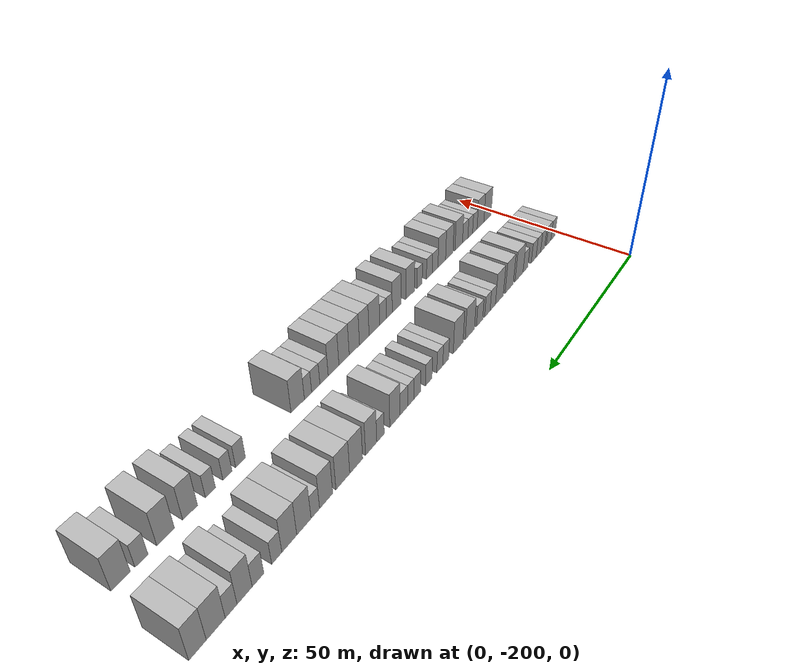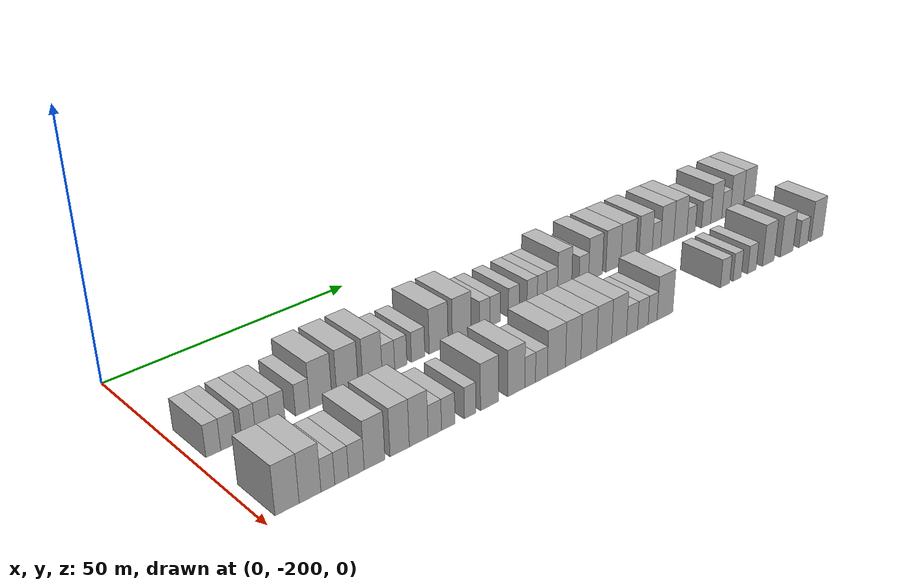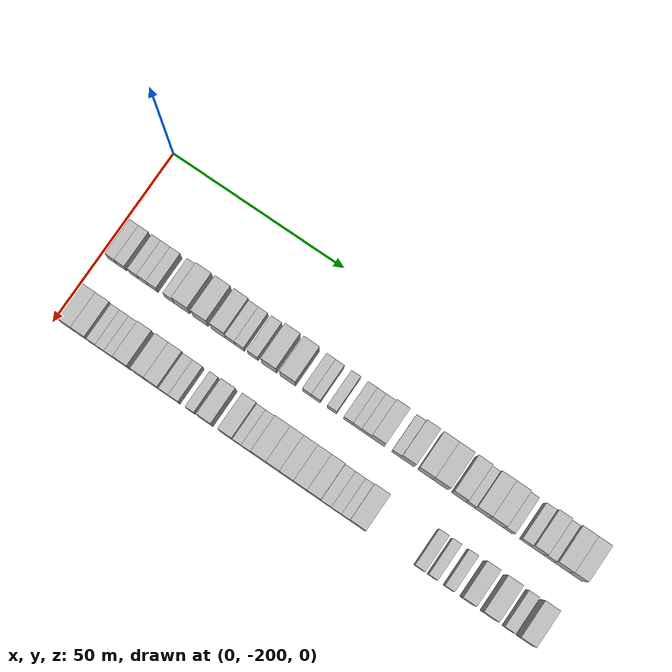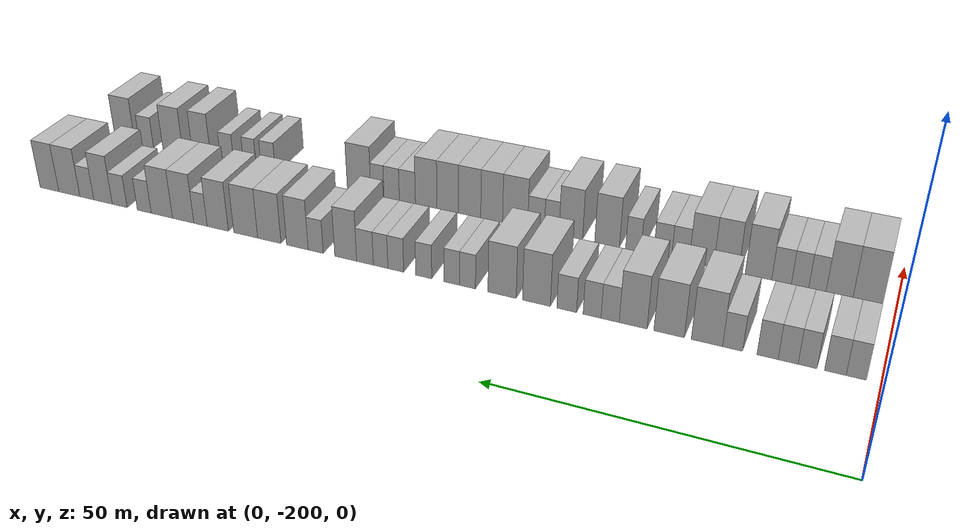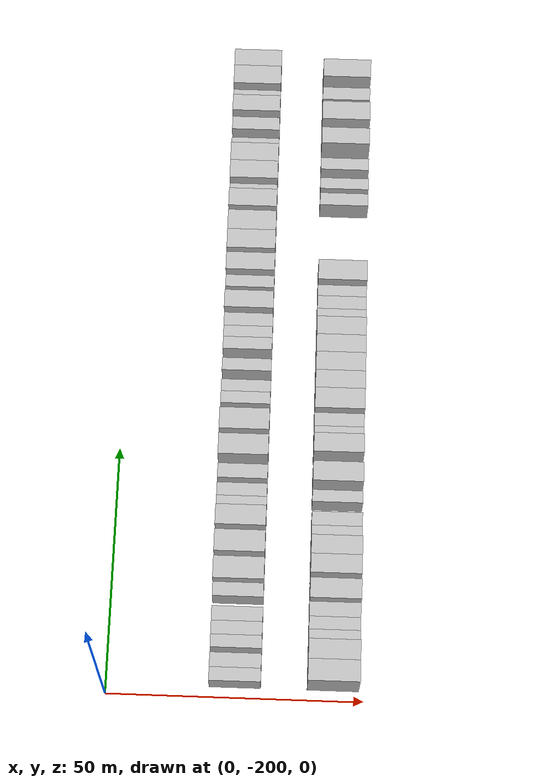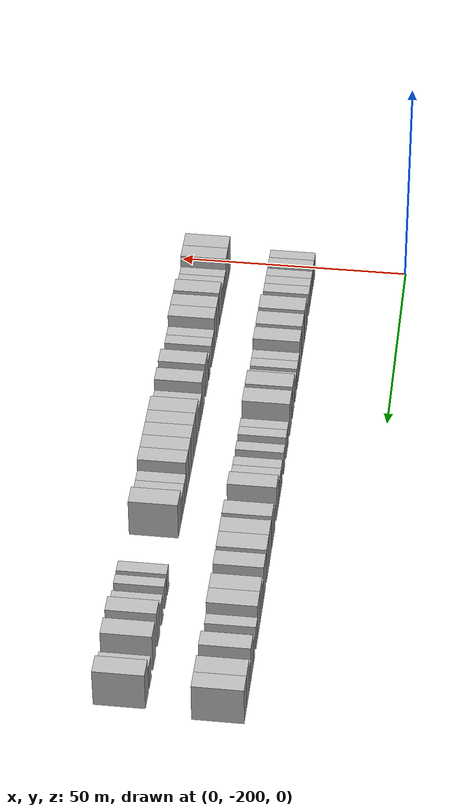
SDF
<sdf version="1.6">
 <world name="default">
  <model name="building_1">
   <static>1</static>
   <pose>25.0000 -196.6671 0 0.000000 0.000000 0.000000</pose>
   <link name="link">
    <pose>0 0 3.00 0 0 0</pose>
    <collision name="collision"><geometry><box><size>10.0000 2.6657 6.0000</size></box></geometry></collision>
    <visual name="visual">
     <cast_shadows>0</cast_shadows>
     <geometry><box><size>10.0000 2.6657 6.0000</size></box></geometry>
     <material>
      <script>
       <uri>model://HANNAS_wall/materials/scripts</uri>
       <uri>model://HANNAS_wall/materials/textures</uri>
       <name>vrc/HANNAS_wall</name>
      </script>
     </material>
    </visual>
   </link>
  </model>
  <model name="building_2">
   <static>1</static>
   <pose>25.0000 -193.9017 0 0.000000 0.000000 0.000000</pose>
   <link name="link">
    <pose>0 0 3.00 0 0 0</pose>
    <collision name="collision"><geometry><box><size>10.0000 2.8653 6.0000</size></box></geometry></collision>
    <visual name="visual">
     <cast_shadows>0</cast_shadows>
     <geometry><box><size>10.0000 2.8653 6.0000</size></box></geometry>
     <material>
      <script>
       <uri>model://HANNAS_wall/materials/scripts</uri>
       <uri>model://HANNAS_wall/materials/textures</uri>
       <name>vrc/HANNAS_wall</name>
      </script>
     </material>
    </visual>
   </link>
  </model>
  <model name="building_3">
   <static>1</static>
   <pose>25.0000 -190.1941 0 0.000000 0.000000 0.000000</pose>
   <link name="link">
    <pose>0 0 3.00 0 0 0</pose>
    <collision name="collision"><geometry><box><size>10.0000 2.5499 6.0000</size></box></geometry></collision>
    <visual name="visual">
     <cast_shadows>0</cast_shadows>
     <geometry><box><size>10.0000 2.5499 6.0000</size></box></geometry>
     <material>
      <script>
       <uri>model://HANNAS_wall/materials/scripts</uri>
       <uri>model://HANNAS_wall/materials/textures</uri>
       <name>vrc/HANNAS_wall</name>
      </script>
     </material>
    </visual>
   </link>
  </model>
  <model name="building_4">
   <static>1</static>
   <pose>25.0000 -187.5583 0 0.000000 0.000000 0.000000</pose>
   <link name="link">
    <pose>0 0 3.00 0 0 0</pose>
    <collision name="collision"><geometry><box><size>10.0000 2.7217 6.0000</size></box></geometry></collision>
    <visual name="visual">
     <cast_shadows>0</cast_shadows>
     <geometry><box><size>10.0000 2.7217 6.0000</size></box></geometry>
     <material>
      <script>
       <uri>model://HANNAS_wall/materials/scripts</uri>
       <uri>model://HANNAS_wall/materials/textures</uri>
       <name>vrc/HANNAS_wall</name>
      </script>
     </material>
    </visual>
   </link>
  </model>
  <model name="building_5">
   <static>1</static>
   <pose>25.0000 -184.7569 0 0.000000 0.000000 0.000000</pose>
   <link name="link">
    <pose>0 0 3.00 0 0 0</pose>
    <collision name="collision"><geometry><box><size>10.0000 2.8812 6.0000</size></box></geometry></collision>
    <visual name="visual">
     <cast_shadows>0</cast_shadows>
     <geometry><box><size>10.0000 2.8812 6.0000</size></box></geometry>
     <material>
      <script>
       <uri>model://HANNAS_wall/materials/scripts</uri>
       <uri>model://HANNAS_wall/materials/textures</uri>
       <name>vrc/HANNAS_wall</name>
      </script>
     </material>
    </visual>
   </link>
  </model>
  <model name="building_6">
   <static>1</static>
   <pose>25.0000 -179.9197 0 0.000000 0.000000 0.000000</pose>
   <link name="link">
    <pose>0 0 3.00 0 0 0</pose>
    <collision name="collision"><geometry><box><size>10.0000 2.7931 6.0000</size></box></geometry></collision>
    <visual name="visual">
     <cast_shadows>0</cast_shadows>
     <geometry><box><size>10.0000 2.7931 6.0000</size></box></geometry>
     <material>
      <script>
       <uri>model://HANNAS_wall/materials/scripts</uri>
       <uri>model://HANNAS_wall/materials/textures</uri>
       <name>vrc/HANNAS_wall</name>
      </script>
     </material>
    </visual>
   </link>
  </model>
  <model name="building_7">
   <static>1</static>
   <pose>25.0000 -176.3036 0 0.000000 0.000000 0.000000</pose>
   <link name="link">
    <pose>0 0 4.50 0 0 0</pose>
    <collision name="collision"><geometry><box><size>10.0000 4.4391 9.0000</size></box></geometry></collision>
    <visual name="visual">
     <cast_shadows>0</cast_shadows>
     <geometry><box><size>10.0000 4.4391 9.0000</size></box></geometry>
     <material>
      <script>
       <uri>model://HANNAS_wall/materials/scripts</uri>
       <uri>model://HANNAS_wall/materials/textures</uri>
       <name>vrc/HANNAS_wall</name>
      </script>
     </material>
    </visual>
   </link>
  </model>
  <model name="building_8">
   <static>1</static>
   <pose>25.0000 -170.8901 0 0.000000 0.000000 0.000000</pose>
   <link name="link">
    <pose>0 0 4.50 0 0 0</pose>
    <collision name="collision"><geometry><box><size>10.0000 4.3879 9.0000</size></box></geometry></collision>
    <visual name="visual">
     <cast_shadows>0</cast_shadows>
     <geometry><box><size>10.0000 4.3879 9.0000</size></box></geometry>
     <material>
      <script>
       <uri>model://HANNAS_wall/materials/scripts</uri>
       <uri>model://HANNAS_wall/materials/textures</uri>
       <name>vrc/HANNAS_wall</name>
      </script>
     </material>
    </visual>
   </link>
  </model>
  <model name="building_9">
   <static>1</static>
   <pose>25.0000 -165.6503 0 0.000000 0.000000 0.000000</pose>
   <link name="link">
    <pose>0 0 4.50 0 0 0</pose>
    <collision name="collision"><geometry><box><size>10.0000 4.0917 9.0000</size></box></geometry></collision>
    <visual name="visual">
     <cast_shadows>0</cast_shadows>
     <geometry><box><size>10.0000 4.0917 9.0000</size></box></geometry>
     <material>
      <script>
       <uri>model://HANNAS_wall/materials/scripts</uri>
       <uri>model://HANNAS_wall/materials/textures</uri>
       <name>vrc/HANNAS_wall</name>
      </script>
     </material>
    </visual>
   </link>
  </model>
  <model name="building_10">
   <static>1</static>
   <pose>25.0000 -162.2498 0 0.000000 0.000000 0.000000</pose>
   <link name="link">
    <pose>0 0 3.00 0 0 0</pose>
    <collision name="collision"><geometry><box><size>10.0000 2.7093 6.0000</size></box></geometry></collision>
    <visual name="visual">
     <cast_shadows>0</cast_shadows>
     <geometry><box><size>10.0000 2.7093 6.0000</size></box></geometry>
     <material>
      <script>
       <uri>model://HANNAS_wall/materials/scripts</uri>
       <uri>model://HANNAS_wall/materials/textures</uri>
       <name>vrc/HANNAS_wall</name>
      </script>
     </material>
    </visual>
   </link>
  </model>
  <model name="building_11">
   <static>1</static>
   <pose>25.0000 -159.5529 0 0.000000 0.000000 0.000000</pose>
   <link name="link">
    <pose>0 0 3.00 0 0 0</pose>
    <collision name="collision"><geometry><box><size>10.0000 2.6846 6.0000</size></box></geometry></collision>
    <visual name="visual">
     <cast_shadows>0</cast_shadows>
     <geometry><box><size>10.0000 2.6846 6.0000</size></box></geometry>
     <material>
      <script>
       <uri>model://HANNAS_wall/materials/scripts</uri>
       <uri>model://HANNAS_wall/materials/textures</uri>
       <name>vrc/HANNAS_wall</name>
      </script>
     </material>
    </visual>
   </link>
  </model>
  <model name="building_12">
   <static>1</static>
   <pose>25.0000 -155.7123 0 0.000000 0.000000 0.000000</pose>
   <link name="link">
    <pose>0 0 3.00 0 0 0</pose>
    <collision name="collision"><geometry><box><size>10.0000 2.9966 6.0000</size></box></geometry></collision>
    <visual name="visual">
     <cast_shadows>0</cast_shadows>
     <geometry><box><size>10.0000 2.9966 6.0000</size></box></geometry>
     <material>
      <script>
       <uri>model://HANNAS_wall/materials/scripts</uri>
       <uri>model://HANNAS_wall/materials/textures</uri>
       <name>vrc/HANNAS_wall</name>
      </script>
     </material>
    </visual>
   </link>
  </model>
  <model name="building_13">
   <static>1</static>
   <pose>25.0000 -151.0611 0 0.000000 0.000000 0.000000</pose>
   <link name="link">
    <pose>0 0 4.50 0 0 0</pose>
    <collision name="collision"><geometry><box><size>10.0000 4.3059 9.0000</size></box></geometry></collision>
    <visual name="visual">
     <cast_shadows>0</cast_shadows>
     <geometry><box><size>10.0000 4.3059 9.0000</size></box></geometry>
     <material>
      <script>
       <uri>model://HANNAS_wall/materials/scripts</uri>
       <uri>model://HANNAS_wall/materials/textures</uri>
       <name>vrc/HANNAS_wall</name>
      </script>
     </material>
    </visual>
   </link>
  </model>
  <model name="building_14">
   <static>1</static>
   <pose>25.0000 -145.6856 0 0.000000 0.000000 0.000000</pose>
   <link name="link">
    <pose>0 0 4.50 0 0 0</pose>
    <collision name="collision"><geometry><box><size>10.0000 4.4451 9.0000</size></box></geometry></collision>
    <visual name="visual">
     <cast_shadows>0</cast_shadows>
     <geometry><box><size>10.0000 4.4451 9.0000</size></box></geometry>
     <material>
      <script>
       <uri>model://HANNAS_wall/materials/scripts</uri>
       <uri>model://HANNAS_wall/materials/textures</uri>
       <name>vrc/HANNAS_wall</name>
      </script>
     </material>
    </visual>
   </link>
  </model>
  <model name="building_15">
   <static>1</static>
   <pose>25.0000 -140.1893 0 0.000000 0.000000 0.000000</pose>
   <link name="link">
    <pose>0 0 3.00 0 0 0</pose>
    <collision name="collision"><geometry><box><size>10.0000 2.5474 6.0000</size></box></geometry></collision>
    <visual name="visual">
     <cast_shadows>0</cast_shadows>
     <geometry><box><size>10.0000 2.5474 6.0000</size></box></geometry>
     <material>
      <script>
       <uri>model://HANNAS_wall/materials/scripts</uri>
       <uri>model://HANNAS_wall/materials/textures</uri>
       <name>vrc/HANNAS_wall</name>
      </script>
     </material>
    </visual>
   </link>
  </model>
  <model name="building_16">
   <static>1</static>
   <pose>25.0000 -137.6492 0 0.000000 0.000000 0.000000</pose>
   <link name="link">
    <pose>0 0 3.00 0 0 0</pose>
    <collision name="collision"><geometry><box><size>10.0000 2.5328 6.0000</size></box></geometry></collision>
    <visual name="visual">
     <cast_shadows>0</cast_shadows>
     <geometry><box><size>10.0000 2.5328 6.0000</size></box></geometry>
     <material>
      <script>
       <uri>model://HANNAS_wall/materials/scripts</uri>
       <uri>model://HANNAS_wall/materials/textures</uri>
       <name>vrc/HANNAS_wall</name>
      </script>
     </material>
    </visual>
   </link>
  </model>
  <model name="building_17">
   <static>1</static>
   <pose>25.0000 -133.0643 0 0.000000 0.000000 0.000000</pose>
   <link name="link">
    <pose>0 0 3.00 0 0 0</pose>
    <collision name="collision"><geometry><box><size>10.0000 2.6369 6.0000</size></box></geometry></collision>
    <visual name="visual">
     <cast_shadows>0</cast_shadows>
     <geometry><box><size>10.0000 2.6369 6.0000</size></box></geometry>
     <material>
      <script>
       <uri>model://HANNAS_wall/materials/scripts</uri>
       <uri>model://HANNAS_wall/materials/textures</uri>
       <name>vrc/HANNAS_wall</name>
      </script>
     </material>
    </visual>
   </link>
  </model>
  <model name="building_18">
   <static>1</static>
   <pose>25.0000 -128.4281 0 0.000000 0.000000 0.000000</pose>
   <link name="link">
    <pose>0 0 3.00 0 0 0</pose>
    <collision name="collision"><geometry><box><size>10.0000 2.6356 6.0000</size></box></geometry></collision>
    <visual name="visual">
     <cast_shadows>0</cast_shadows>
     <geometry><box><size>10.0000 2.6356 6.0000</size></box></geometry>
     <material>
      <script>
       <uri>model://HANNAS_wall/materials/scripts</uri>
       <uri>model://HANNAS_wall/materials/textures</uri>
       <name>vrc/HANNAS_wall</name>
      </script>
     </material>
    </visual>
   </link>
  </model>
  <model name="building_19">
   <static>1</static>
   <pose>25.0000 -125.8815 0 0.000000 0.000000 0.000000</pose>
   <link name="link">
    <pose>0 0 3.00 0 0 0</pose>
    <collision name="collision"><geometry><box><size>10.0000 2.4576 6.0000</size></box></geometry></collision>
    <visual name="visual">
     <cast_shadows>0</cast_shadows>
     <geometry><box><size>10.0000 2.4576 6.0000</size></box></geometry>
     <material>
      <script>
       <uri>model://HANNAS_wall/materials/scripts</uri>
       <uri>model://HANNAS_wall/materials/textures</uri>
       <name>vrc/HANNAS_wall</name>
      </script>
     </material>
    </visual>
   </link>
  </model>
  <model name="building_20">
   <static>1</static>
   <pose>25.0000 -123.2328 0 0.000000 0.000000 0.000000</pose>
   <link name="link">
    <pose>0 0 3.00 0 0 0</pose>
    <collision name="collision"><geometry><box><size>10.0000 2.8397 6.0000</size></box></geometry></collision>
    <visual name="visual">
     <cast_shadows>0</cast_shadows>
     <geometry><box><size>10.0000 2.8397 6.0000</size></box></geometry>
     <material>
      <script>
       <uri>model://HANNAS_wall/materials/scripts</uri>
       <uri>model://HANNAS_wall/materials/textures</uri>
       <name>vrc/HANNAS_wall</name>
      </script>
     </material>
    </visual>
   </link>
  </model>
  <model name="building_21">
   <static>1</static>
   <pose>25.0000 -119.9275 0 0.000000 0.000000 0.000000</pose>
   <link name="link">
    <pose>0 0 4.50 0 0 0</pose>
    <collision name="collision"><geometry><box><size>10.0000 3.7709 9.0000</size></box></geometry></collision>
    <visual name="visual">
     <cast_shadows>0</cast_shadows>
     <geometry><box><size>10.0000 3.7709 9.0000</size></box></geometry>
     <material>
      <script>
       <uri>model://HANNAS_wall/materials/scripts</uri>
       <uri>model://HANNAS_wall/materials/textures</uri>
       <name>vrc/HANNAS_wall</name>
      </script>
     </material>
    </visual>
   </link>
  </model>
  <model name="building_22">
   <static>1</static>
   <pose>25.0000 -114.7271 0 0.000000 0.000000 0.000000</pose>
   <link name="link">
    <pose>0 0 3.00 0 0 0</pose>
    <collision name="collision"><geometry><box><size>10.0000 2.6299 6.0000</size></box></geometry></collision>
    <visual name="visual">
     <cast_shadows>0</cast_shadows>
     <geometry><box><size>10.0000 2.6299 6.0000</size></box></geometry>
     <material>
      <script>
       <uri>model://HANNAS_wall/materials/scripts</uri>
       <uri>model://HANNAS_wall/materials/textures</uri>
       <name>vrc/HANNAS_wall</name>
      </script>
     </material>
    </visual>
   </link>
  </model>
  <model name="building_23">
   <static>1</static>
   <pose>25.0000 -111.5015 0 0.000000 0.000000 0.000000</pose>
   <link name="link">
    <pose>0 0 4.50 0 0 0</pose>
    <collision name="collision"><geometry><box><size>10.0000 3.8214 9.0000</size></box></geometry></collision>
    <visual name="visual">
     <cast_shadows>0</cast_shadows>
     <geometry><box><size>10.0000 3.8214 9.0000</size></box></geometry>
     <material>
      <script>
       <uri>model://HANNAS_wall/materials/scripts</uri>
       <uri>model://HANNAS_wall/materials/textures</uri>
       <name>vrc/HANNAS_wall</name>
      </script>
     </material>
    </visual>
   </link>
  </model>
  <model name="building_24">
   <static>1</static>
   <pose>25.0000 -106.4917 0 0.000000 0.000000 0.000000</pose>
   <link name="link">
    <pose>0 0 4.50 0 0 0</pose>
    <collision name="collision"><geometry><box><size>10.0000 4.1983 9.0000</size></box></geometry></collision>
    <visual name="visual">
     <cast_shadows>0</cast_shadows>
     <geometry><box><size>10.0000 4.1983 9.0000</size></box></geometry>
     <material>
      <script>
       <uri>model://HANNAS_wall/materials/scripts</uri>
       <uri>model://HANNAS_wall/materials/textures</uri>
       <name>vrc/HANNAS_wall</name>
      </script>
     </material>
    </visual>
   </link>
  </model>
  <model name="building_25">
   <static>1</static>
   <pose>25.0000 -102.2147 0 0.000000 0.000000 0.000000</pose>
   <link name="link">
    <pose>0 0 4.50 0 0 0</pose>
    <collision name="collision"><geometry><box><size>10.0000 4.3557 9.0000</size></box></geometry></collision>
    <visual name="visual">
     <cast_shadows>0</cast_shadows>
     <geometry><box><size>10.0000 4.3557 9.0000</size></box></geometry>
     <material>
      <script>
       <uri>model://HANNAS_wall/materials/scripts</uri>
       <uri>model://HANNAS_wall/materials/textures</uri>
       <name>vrc/HANNAS_wall</name>
      </script>
     </material>
    </visual>
   </link>
  </model>
  <model name="building_26">
   <static>1</static>
   <pose>25.0000 -97.0716 0 0.000000 0.000000 0.000000</pose>
   <link name="link">
    <pose>0 0 4.50 0 0 0</pose>
    <collision name="collision"><geometry><box><size>10.0000 3.9305 9.0000</size></box></geometry></collision>
    <visual name="visual">
     <cast_shadows>0</cast_shadows>
     <geometry><box><size>10.0000 3.9305 9.0000</size></box></geometry>
     <material>
      <script>
       <uri>model://HANNAS_wall/materials/scripts</uri>
       <uri>model://HANNAS_wall/materials/textures</uri>
       <name>vrc/HANNAS_wall</name>
      </script>
     </material>
    </visual>
   </link>
  </model>
  <model name="building_27">
   <static>1</static>
   <pose>25.0000 -93.8565 0 0.000000 0.000000 0.000000</pose>
   <link name="link">
    <pose>0 0 3.00 0 0 0</pose>
    <collision name="collision"><geometry><box><size>10.0000 2.4998 6.0000</size></box></geometry></collision>
    <visual name="visual">
     <cast_shadows>0</cast_shadows>
     <geometry><box><size>10.0000 2.4998 6.0000</size></box></geometry>
     <material>
      <script>
       <uri>model://HANNAS_wall/materials/scripts</uri>
       <uri>model://HANNAS_wall/materials/textures</uri>
       <name>vrc/HANNAS_wall</name>
      </script>
     </material>
    </visual>
   </link>
  </model>
  <model name="building_28">
   <static>1</static>
   <pose>25.0000 -90.5941 0 0.000000 0.000000 0.000000</pose>
   <link name="link">
    <pose>0 0 4.50 0 0 0</pose>
    <collision name="collision"><geometry><box><size>10.0000 4.0250 9.0000</size></box></geometry></collision>
    <visual name="visual">
     <cast_shadows>0</cast_shadows>
     <geometry><box><size>10.0000 4.0250 9.0000</size></box></geometry>
     <material>
      <script>
       <uri>model://HANNAS_wall/materials/scripts</uri>
       <uri>model://HANNAS_wall/materials/textures</uri>
       <name>vrc/HANNAS_wall</name>
      </script>
     </material>
    </visual>
   </link>
  </model>
  <model name="building_29">
   <static>1</static>
   <pose>25.0000 -86.5436 0 0.000000 0.000000 0.000000</pose>
   <link name="link">
    <pose>0 0 4.50 0 0 0</pose>
    <collision name="collision"><geometry><box><size>10.0000 4.0760 9.0000</size></box></geometry></collision>
    <visual name="visual">
     <cast_shadows>0</cast_shadows>
     <geometry><box><size>10.0000 4.0760 9.0000</size></box></geometry>
     <material>
      <script>
       <uri>model://HANNAS_wall/materials/scripts</uri>
       <uri>model://HANNAS_wall/materials/textures</uri>
       <name>vrc/HANNAS_wall</name>
      </script>
     </material>
    </visual>
   </link>
  </model>
  <model name="building_30">
   <static>1</static>
   <pose>25.0000 -83.1639 0 0.000000 0.000000 0.000000</pose>
   <link name="link">
    <pose>0 0 3.00 0 0 0</pose>
    <collision name="collision"><geometry><box><size>10.0000 2.6834 6.0000</size></box></geometry></collision>
    <visual name="visual">
     <cast_shadows>0</cast_shadows>
     <geometry><box><size>10.0000 2.6834 6.0000</size></box></geometry>
     <material>
      <script>
       <uri>model://HANNAS_wall/materials/scripts</uri>
       <uri>model://HANNAS_wall/materials/textures</uri>
       <name>vrc/HANNAS_wall</name>
      </script>
     </material>
    </visual>
   </link>
  </model>
  <model name="building_31">
   <static>1</static>
   <pose>25.0000 -78.3630 0 0.000000 0.000000 0.000000</pose>
   <link name="link">
    <pose>0 0 3.00 0 0 0</pose>
    <collision name="collision"><geometry><box><size>10.0000 2.9185 6.0000</size></box></geometry></collision>
    <visual name="visual">
     <cast_shadows>0</cast_shadows>
     <geometry><box><size>10.0000 2.9185 6.0000</size></box></geometry>
     <material>
      <script>
       <uri>model://HANNAS_wall/materials/scripts</uri>
       <uri>model://HANNAS_wall/materials/textures</uri>
       <name>vrc/HANNAS_wall</name>
      </script>
     </material>
    </visual>
   </link>
  </model>
  <model name="building_32">
   <static>1</static>
   <pose>25.0000 -75.0674 0 0.000000 0.000000 0.000000</pose>
   <link name="link">
    <pose>0 0 4.50 0 0 0</pose>
    <collision name="collision"><geometry><box><size>10.0000 3.6728 9.0000</size></box></geometry></collision>
    <visual name="visual">
     <cast_shadows>0</cast_shadows>
     <geometry><box><size>10.0000 3.6728 9.0000</size></box></geometry>
     <material>
      <script>
       <uri>model://HANNAS_wall/materials/scripts</uri>
       <uri>model://HANNAS_wall/materials/textures</uri>
       <name>vrc/HANNAS_wall</name>
      </script>
     </material>
    </visual>
   </link>
  </model>
  <model name="building_33">
   <static>1</static>
   <pose>25.0000 -71.8355 0 0.000000 0.000000 0.000000</pose>
   <link name="link">
    <pose>0 0 3.00 0 0 0</pose>
    <collision name="collision"><geometry><box><size>10.0000 2.7911 6.0000</size></box></geometry></collision>
    <visual name="visual">
     <cast_shadows>0</cast_shadows>
     <geometry><box><size>10.0000 2.7911 6.0000</size></box></geometry>
     <material>
      <script>
       <uri>model://HANNAS_wall/materials/scripts</uri>
       <uri>model://HANNAS_wall/materials/textures</uri>
       <name>vrc/HANNAS_wall</name>
      </script>
     </material>
    </visual>
   </link>
  </model>
  <model name="building_34">
   <static>1</static>
   <pose>25.0000 -68.3022 0 0.000000 0.000000 0.000000</pose>
   <link name="link">
    <pose>0 0 4.50 0 0 0</pose>
    <collision name="collision"><geometry><box><size>10.0000 4.2754 9.0000</size></box></geometry></collision>
    <visual name="visual">
     <cast_shadows>0</cast_shadows>
     <geometry><box><size>10.0000 4.2754 9.0000</size></box></geometry>
     <material>
      <script>
       <uri>model://HANNAS_wall/materials/scripts</uri>
       <uri>model://HANNAS_wall/materials/textures</uri>
       <name>vrc/HANNAS_wall</name>
      </script>
     </material>
    </visual>
   </link>
  </model>
  <model name="building_35">
   <static>1</static>
   <pose>25.0000 -64.2594 0 0.000000 0.000000 0.000000</pose>
   <link name="link">
    <pose>0 0 4.50 0 0 0</pose>
    <collision name="collision"><geometry><box><size>10.0000 3.8101 9.0000</size></box></geometry></collision>
    <visual name="visual">
     <cast_shadows>0</cast_shadows>
     <geometry><box><size>10.0000 3.8101 9.0000</size></box></geometry>
     <material>
      <script>
       <uri>model://HANNAS_wall/materials/scripts</uri>
       <uri>model://HANNAS_wall/materials/textures</uri>
       <name>vrc/HANNAS_wall</name>
      </script>
     </material>
    </visual>
   </link>
  </model>
  <model name="building_99">
   <static>1</static>
   <pose>44.0000 -195.8763 0 0.000000 0.000000 0.000000</pose>
   <link name="link">
    <pose>0 0 4.50 0 0 0</pose>
    <collision name="collision"><geometry><box><size>10.0000 4.2473 9.0000</size></box></geometry></collision>
    <visual name="visual">
     <cast_shadows>0</cast_shadows>
     <geometry><box><size>10.0000 4.2473 9.0000</size></box></geometry>
     <material>
      <script>
       <uri>model://HANNAS_wall/materials/scripts</uri>
       <uri>model://HANNAS_wall/materials/textures</uri>
       <name>vrc/HANNAS_wall</name>
      </script>
     </material>
    </visual>
   </link>
  </model>
  <model name="building_100">
   <static>1</static>
   <pose>44.0000 -191.7968 0 0.000000 0.000000 0.000000</pose>
   <link name="link">
    <pose>0 0 4.50 0 0 0</pose>
    <collision name="collision"><geometry><box><size>10.0000 3.9117 9.0000</size></box></geometry></collision>
    <visual name="visual">
     <cast_shadows>0</cast_shadows>
     <geometry><box><size>10.0000 3.9117 9.0000</size></box></geometry>
     <material>
      <script>
       <uri>model://HANNAS_wall/materials/scripts</uri>
       <uri>model://HANNAS_wall/materials/textures</uri>
       <name>vrc/HANNAS_wall</name>
      </script>
     </material>
    </visual>
   </link>
  </model>
  <model name="building_101">
   <static>1</static>
   <pose>44.0000 -188.5766 0 0.000000 0.000000 0.000000</pose>
   <link name="link">
    <pose>0 0 3.00 0 0 0</pose>
    <collision name="collision"><geometry><box><size>10.0000 2.5287 6.0000</size></box></geometry></collision>
    <visual name="visual">
     <cast_shadows>0</cast_shadows>
     <geometry><box><size>10.0000 2.5287 6.0000</size></box></geometry>
     <material>
      <script>
       <uri>model://HANNAS_wall/materials/scripts</uri>
       <uri>model://HANNAS_wall/materials/textures</uri>
       <name>vrc/HANNAS_wall</name>
      </script>
     </material>
    </visual>
   </link>
  </model>
  <model name="building_102">
   <static>1</static>
   <pose>44.0000 -186.0329 0 0.000000 0.000000 0.000000</pose>
   <link name="link">
    <pose>0 0 3.00 0 0 0</pose>
    <collision name="collision"><geometry><box><size>10.0000 2.5588 6.0000</size></box></geometry></collision>
    <visual name="visual">
     <cast_shadows>0</cast_shadows>
     <geometry><box><size>10.0000 2.5588 6.0000</size></box></geometry>
     <material>
      <script>
       <uri>model://HANNAS_wall/materials/scripts</uri>
       <uri>model://HANNAS_wall/materials/textures</uri>
       <name>vrc/HANNAS_wall</name>
      </script>
     </material>
    </visual>
   </link>
  </model>
  <model name="building_103">
   <static>1</static>
   <pose>44.0000 -183.2848 0 0.000000 0.000000 0.000000</pose>
   <link name="link">
    <pose>0 0 3.00 0 0 0</pose>
    <collision name="collision"><geometry><box><size>10.0000 2.9373 6.0000</size></box></geometry></collision>
    <visual name="visual">
     <cast_shadows>0</cast_shadows>
     <geometry><box><size>10.0000 2.9373 6.0000</size></box></geometry>
     <material>
      <script>
       <uri>model://HANNAS_wall/materials/scripts</uri>
       <uri>model://HANNAS_wall/materials/textures</uri>
       <name>vrc/HANNAS_wall</name>
      </script>
     </material>
    </visual>
   </link>
  </model>
  <model name="building_104">
   <static>1</static>
   <pose>44.0000 -179.8151 0 0.000000 0.000000 0.000000</pose>
   <link name="link">
    <pose>0 0 4.50 0 0 0</pose>
    <collision name="collision"><geometry><box><size>10.0000 4.0022 9.0000</size></box></geometry></collision>
    <visual name="visual">
     <cast_shadows>0</cast_shadows>
     <geometry><box><size>10.0000 4.0022 9.0000</size></box></geometry>
     <material>
      <script>
       <uri>model://HANNAS_wall/materials/scripts</uri>
       <uri>model://HANNAS_wall/materials/textures</uri>
       <name>vrc/HANNAS_wall</name>
      </script>
     </material>
    </visual>
   </link>
  </model>
  <model name="building_105">
   <static>1</static>
   <pose>44.0000 -174.9073 0 0.000000 0.000000 0.000000</pose>
   <link name="link">
    <pose>0 0 4.50 0 0 0</pose>
    <collision name="collision"><geometry><box><size>10.0000 3.8133 9.0000</size></box></geometry></collision>
    <visual name="visual">
     <cast_shadows>0</cast_shadows>
     <geometry><box><size>10.0000 3.8133 9.0000</size></box></geometry>
     <material>
      <script>
       <uri>model://HANNAS_wall/materials/scripts</uri>
       <uri>model://HANNAS_wall/materials/textures</uri>
       <name>vrc/HANNAS_wall</name>
      </script>
     </material>
    </visual>
   </link>
  </model>
  <model name="building_106">
   <static>1</static>
   <pose>44.0000 -171.0996 0 0.000000 0.000000 0.000000</pose>
   <link name="link">
    <pose>0 0 4.50 0 0 0</pose>
    <collision name="collision"><geometry><box><size>10.0000 3.8022 9.0000</size></box></geometry></collision>
    <visual name="visual">
     <cast_shadows>0</cast_shadows>
     <geometry><box><size>10.0000 3.8022 9.0000</size></box></geometry>
     <material>
      <script>
       <uri>model://HANNAS_wall/materials/scripts</uri>
       <uri>model://HANNAS_wall/materials/textures</uri>
       <name>vrc/HANNAS_wall</name>
      </script>
     </material>
    </visual>
   </link>
  </model>
  <model name="building_107">
   <static>1</static>
   <pose>44.0000 -167.8122 0 0.000000 0.000000 0.000000</pose>
   <link name="link">
    <pose>0 0 3.00 0 0 0</pose>
    <collision name="collision"><geometry><box><size>10.0000 2.7725 6.0000</size></box></geometry></collision>
    <visual name="visual">
     <cast_shadows>0</cast_shadows>
     <geometry><box><size>10.0000 2.7725 6.0000</size></box></geometry>
     <material>
      <script>
       <uri>model://HANNAS_wall/materials/scripts</uri>
       <uri>model://HANNAS_wall/materials/textures</uri>
       <name>vrc/HANNAS_wall</name>
      </script>
     </material>
    </visual>
   </link>
  </model>
  <model name="building_108">
   <static>1</static>
   <pose>44.0000 -165.0087 0 0.000000 0.000000 0.000000</pose>
   <link name="link">
    <pose>0 0 3.00 0 0 0</pose>
    <collision name="collision"><geometry><box><size>10.0000 2.8345 6.0000</size></box></geometry></collision>
    <visual name="visual">
     <cast_shadows>0</cast_shadows>
     <geometry><box><size>10.0000 2.8345 6.0000</size></box></geometry>
     <material>
      <script>
       <uri>model://HANNAS_wall/materials/scripts</uri>
       <uri>model://HANNAS_wall/materials/textures</uri>
       <name>vrc/HANNAS_wall</name>
      </script>
     </material>
    </visual>
   </link>
  </model>
  <model name="building_109">
   <static>1</static>
   <pose>44.0000 -160.3559 0 0.000000 0.000000 0.000000</pose>
   <link name="link">
    <pose>0 0 3.00 0 0 0</pose>
    <collision name="collision"><geometry><box><size>10.0000 2.4710 6.0000</size></box></geometry></collision>
    <visual name="visual">
     <cast_shadows>0</cast_shadows>
     <geometry><box><size>10.0000 2.4710 6.0000</size></box></geometry>
     <material>
      <script>
       <uri>model://HANNAS_wall/materials/scripts</uri>
       <uri>model://HANNAS_wall/materials/textures</uri>
       <name>vrc/HANNAS_wall</name>
      </script>
     </material>
    </visual>
   </link>
  </model>
  <model name="building_110">
   <static>1</static>
   <pose>44.0000 -156.1059 0 0.000000 0.000000 0.000000</pose>
   <link name="link">
    <pose>0 0 4.50 0 0 0</pose>
    <collision name="collision"><geometry><box><size>10.0000 4.0290 9.0000</size></box></geometry></collision>
    <visual name="visual">
     <cast_shadows>0</cast_shadows>
     <geometry><box><size>10.0000 4.0290 9.0000</size></box></geometry>
     <material>
      <script>
       <uri>model://HANNAS_wall/materials/scripts</uri>
       <uri>model://HANNAS_wall/materials/textures</uri>
       <name>vrc/HANNAS_wall</name>
      </script>
     </material>
    </visual>
   </link>
  </model>
  <model name="building_111">
   <static>1</static>
   <pose>44.0000 -150.1373 0 0.000000 0.000000 0.000000</pose>
   <link name="link">
    <pose>0 0 4.50 0 0 0</pose>
    <collision name="collision"><geometry><box><size>10.0000 3.9082 9.0000</size></box></geometry></collision>
    <visual name="visual">
     <cast_shadows>0</cast_shadows>
     <geometry><box><size>10.0000 3.9082 9.0000</size></box></geometry>
     <material>
      <script>
       <uri>model://HANNAS_wall/materials/scripts</uri>
       <uri>model://HANNAS_wall/materials/textures</uri>
       <name>vrc/HANNAS_wall</name>
      </script>
     </material>
    </visual>
   </link>
  </model>
  <model name="building_112">
   <static>1</static>
   <pose>44.0000 -146.9574 0 0.000000 0.000000 0.000000</pose>
   <link name="link">
    <pose>0 0 3.00 0 0 0</pose>
    <collision name="collision"><geometry><box><size>10.0000 2.4517 6.0000</size></box></geometry></collision>
    <visual name="visual">
     <cast_shadows>0</cast_shadows>
     <geometry><box><size>10.0000 2.4517 6.0000</size></box></geometry>
     <material>
      <script>
       <uri>model://HANNAS_wall/materials/scripts</uri>
       <uri>model://HANNAS_wall/materials/textures</uri>
       <name>vrc/HANNAS_wall</name>
      </script>
     </material>
    </visual>
   </link>
  </model>
  <model name="building_113">
   <static>1</static>
   <pose>44.0000 -144.3265 0 0.000000 0.000000 0.000000</pose>
   <link name="link">
    <pose>0 0 3.00 0 0 0</pose>
    <collision name="collision"><geometry><box><size>10.0000 2.8101 6.0000</size></box></geometry></collision>
    <visual name="visual">
     <cast_shadows>0</cast_shadows>
     <geometry><box><size>10.0000 2.8101 6.0000</size></box></geometry>
     <material>
      <script>
       <uri>model://HANNAS_wall/materials/scripts</uri>
       <uri>model://HANNAS_wall/materials/textures</uri>
       <name>vrc/HANNAS_wall</name>
      </script>
     </material>
    </visual>
   </link>
  </model>
  <model name="building_114">
   <static>1</static>
   <pose>44.0000 -140.7600 0 0.000000 0.000000 0.000000</pose>
   <link name="link">
    <pose>0 0 4.50 0 0 0</pose>
    <collision name="collision"><geometry><box><size>10.0000 4.3229 9.0000</size></box></geometry></collision>
    <visual name="visual">
     <cast_shadows>0</cast_shadows>
     <geometry><box><size>10.0000 4.3229 9.0000</size></box></geometry>
     <material>
      <script>
       <uri>model://HANNAS_wall/materials/scripts</uri>
       <uri>model://HANNAS_wall/materials/textures</uri>
       <name>vrc/HANNAS_wall</name>
      </script>
     </material>
    </visual>
   </link>
  </model>
  <model name="building_115">
   <static>1</static>
   <pose>44.0000 -136.7136 0 0.000000 0.000000 0.000000</pose>
   <link name="link">
    <pose>0 0 4.50 0 0 0</pose>
    <collision name="collision"><geometry><box><size>10.0000 3.7700 9.0000</size></box></geometry></collision>
    <visual name="visual">
     <cast_shadows>0</cast_shadows>
     <geometry><box><size>10.0000 3.7700 9.0000</size></box></geometry>
     <material>
      <script>
       <uri>model://HANNAS_wall/materials/scripts</uri>
       <uri>model://HANNAS_wall/materials/textures</uri>
       <name>vrc/HANNAS_wall</name>
      </script>
     </material>
    </visual>
   </link>
  </model>
  <model name="building_116">
   <static>1</static>
   <pose>44.0000 -132.8602 0 0.000000 0.000000 0.000000</pose>
   <link name="link">
    <pose>0 0 4.50 0 0 0</pose>
    <collision name="collision"><geometry><box><size>10.0000 3.9367 9.0000</size></box></geometry></collision>
    <visual name="visual">
     <cast_shadows>0</cast_shadows>
     <geometry><box><size>10.0000 3.9367 9.0000</size></box></geometry>
     <material>
      <script>
       <uri>model://HANNAS_wall/materials/scripts</uri>
       <uri>model://HANNAS_wall/materials/textures</uri>
       <name>vrc/HANNAS_wall</name>
      </script>
     </material>
    </visual>
   </link>
  </model>
  <model name="building_117">
   <static>1</static>
   <pose>44.0000 -128.9895 0 0.000000 0.000000 0.000000</pose>
   <link name="link">
    <pose>0 0 4.50 0 0 0</pose>
    <collision name="collision"><geometry><box><size>10.0000 3.8049 9.0000</size></box></geometry></collision>
    <visual name="visual">
     <cast_shadows>0</cast_shadows>
     <geometry><box><size>10.0000 3.8049 9.0000</size></box></geometry>
     <material>
      <script>
       <uri>model://HANNAS_wall/materials/scripts</uri>
       <uri>model://HANNAS_wall/materials/textures</uri>
       <name>vrc/HANNAS_wall</name>
      </script>
     </material>
    </visual>
   </link>
  </model>
  <model name="building_118">
   <static>1</static>
   <pose>44.0000 -125.1525 0 0.000000 0.000000 0.000000</pose>
   <link name="link">
    <pose>0 0 4.50 0 0 0</pose>
    <collision name="collision"><geometry><box><size>10.0000 3.8691 9.0000</size></box></geometry></collision>
    <visual name="visual">
     <cast_shadows>0</cast_shadows>
     <geometry><box><size>10.0000 3.8691 9.0000</size></box></geometry>
     <material>
      <script>
       <uri>model://HANNAS_wall/materials/scripts</uri>
       <uri>model://HANNAS_wall/materials/textures</uri>
       <name>vrc/HANNAS_wall</name>
      </script>
     </material>
    </visual>
   </link>
  </model>
  <model name="building_119">
   <static>1</static>
   <pose>44.0000 -121.7632 0 0.000000 0.000000 0.000000</pose>
   <link name="link">
    <pose>0 0 3.00 0 0 0</pose>
    <collision name="collision"><geometry><box><size>10.0000 2.9093 6.0000</size></box></geometry></collision>
    <visual name="visual">
     <cast_shadows>0</cast_shadows>
     <geometry><box><size>10.0000 2.9093 6.0000</size></box></geometry>
     <material>
      <script>
       <uri>model://HANNAS_wall/materials/scripts</uri>
       <uri>model://HANNAS_wall/materials/textures</uri>
       <name>vrc/HANNAS_wall</name>
      </script>
     </material>
    </visual>
   </link>
  </model>
  <model name="building_120">
   <static>1</static>
   <pose>44.0000 -118.8971 0 0.000000 0.000000 0.000000</pose>
   <link name="link">
    <pose>0 0 3.00 0 0 0</pose>
    <collision name="collision"><geometry><box><size>10.0000 2.8230 6.0000</size></box></geometry></collision>
    <visual name="visual">
     <cast_shadows>0</cast_shadows>
     <geometry><box><size>10.0000 2.8230 6.0000</size></box></geometry>
     <material>
      <script>
       <uri>model://HANNAS_wall/materials/scripts</uri>
       <uri>model://HANNAS_wall/materials/textures</uri>
       <name>vrc/HANNAS_wall</name>
      </script>
     </material>
    </visual>
   </link>
  </model>
  <model name="building_121">
   <static>1</static>
   <pose>44.0000 -116.2780 0 0.000000 0.000000 0.000000</pose>
   <link name="link">
    <pose>0 0 3.00 0 0 0</pose>
    <collision name="collision"><geometry><box><size>10.0000 2.4151 6.0000</size></box></geometry></collision>
    <visual name="visual">
     <cast_shadows>0</cast_shadows>
     <geometry><box><size>10.0000 2.4151 6.0000</size></box></geometry>
     <material>
      <script>
       <uri>model://HANNAS_wall/materials/scripts</uri>
       <uri>model://HANNAS_wall/materials/textures</uri>
       <name>vrc/HANNAS_wall</name>
      </script>
     </material>
    </visual>
   </link>
  </model>
  <model name="building_122">
   <static>1</static>
   <pose>44.0000 -112.8801 0 0.000000 0.000000 0.000000</pose>
   <link name="link">
    <pose>0 0 4.50 0 0 0</pose>
    <collision name="collision"><geometry><box><size>10.0000 4.3808 9.0000</size></box></geometry></collision>
    <visual name="visual">
     <cast_shadows>0</cast_shadows>
     <geometry><box><size>10.0000 4.3808 9.0000</size></box></geometry>
     <material>
      <script>
       <uri>model://HANNAS_wall/materials/scripts</uri>
       <uri>model://HANNAS_wall/materials/textures</uri>
       <name>vrc/HANNAS_wall</name>
      </script>
     </material>
    </visual>
   </link>
  </model>
  <model name="building_123">
   <static>1</static>
   <pose>44.0000 -95.5357 0 0.000000 0.000000 0.000000</pose>
   <link name="link">
    <pose>0 0 3.00 0 0 0</pose>
    <collision name="collision"><geometry><box><size>10.0000 2.7693 6.0000</size></box></geometry></collision>
    <visual name="visual">
     <cast_shadows>0</cast_shadows>
     <geometry><box><size>10.0000 2.7693 6.0000</size></box></geometry>
     <material>
      <script>
       <uri>model://HANNAS_wall/materials/scripts</uri>
       <uri>model://HANNAS_wall/materials/textures</uri>
       <name>vrc/HANNAS_wall</name>
      </script>
     </material>
    </visual>
   </link>
  </model>
  <model name="building_124">
   <static>1</static>
   <pose>44.0000 -91.9065 0 0.000000 0.000000 0.000000</pose>
   <link name="link">
    <pose>0 0 3.00 0 0 0</pose>
    <collision name="collision"><geometry><box><size>10.0000 2.4892 6.0000</size></box></geometry></collision>
    <visual name="visual">
     <cast_shadows>0</cast_shadows>
     <geometry><box><size>10.0000 2.4892 6.0000</size></box></geometry>
     <material>
      <script>
       <uri>model://HANNAS_wall/materials/scripts</uri>
       <uri>model://HANNAS_wall/materials/textures</uri>
       <name>vrc/HANNAS_wall</name>
      </script>
     </material>
    </visual>
   </link>
  </model>
  <model name="building_125">
   <static>1</static>
   <pose>44.0000 -87.3406 0 0.000000 0.000000 0.000000</pose>
   <link name="link">
    <pose>0 0 3.00 0 0 0</pose>
    <collision name="collision"><geometry><box><size>10.0000 2.6426 6.0000</size></box></geometry></collision>
    <visual name="visual">
     <cast_shadows>0</cast_shadows>
     <geometry><box><size>10.0000 2.6426 6.0000</size></box></geometry>
     <material>
      <script>
       <uri>model://HANNAS_wall/materials/scripts</uri>
       <uri>model://HANNAS_wall/materials/textures</uri>
       <name>vrc/HANNAS_wall</name>
      </script>
     </material>
    </visual>
   </link>
  </model>
  <model name="building_126">
   <static>1</static>
   <pose>44.0000 -82.1664 0 0.000000 0.000000 0.000000</pose>
   <link name="link">
    <pose>0 0 4.50 0 0 0</pose>
    <collision name="collision"><geometry><box><size>10.0000 3.7058 9.0000</size></box></geometry></collision>
    <visual name="visual">
     <cast_shadows>0</cast_shadows>
     <geometry><box><size>10.0000 3.7058 9.0000</size></box></geometry>
     <material>
      <script>
       <uri>model://HANNAS_wall/materials/scripts</uri>
       <uri>model://HANNAS_wall/materials/textures</uri>
       <name>vrc/HANNAS_wall</name>
      </script>
     </material>
    </visual>
   </link>
  </model>
  <model name="building_127">
   <static>1</static>
   <pose>44.0000 -76.2307 0 0.000000 0.000000 0.000000</pose>
   <link name="link">
    <pose>0 0 4.50 0 0 0</pose>
    <collision name="collision"><geometry><box><size>10.0000 4.1656 9.0000</size></box></geometry></collision>
    <visual name="visual">
     <cast_shadows>0</cast_shadows>
     <geometry><box><size>10.0000 4.1656 9.0000</size></box></geometry>
     <material>
      <script>
       <uri>model://HANNAS_wall/materials/scripts</uri>
       <uri>model://HANNAS_wall/materials/textures</uri>
       <name>vrc/HANNAS_wall</name>
      </script>
     </material>
    </visual>
   </link>
  </model>
  <model name="building_128">
   <static>1</static>
   <pose>44.0000 -70.6885 0 0.000000 0.000000 0.000000</pose>
   <link name="link">
    <pose>0 0 3.00 0 0 0</pose>
    <collision name="collision"><geometry><box><size>10.0000 2.9189 6.0000</size></box></geometry></collision>
    <visual name="visual">
     <cast_shadows>0</cast_shadows>
     <geometry><box><size>10.0000 2.9189 6.0000</size></box></geometry>
     <material>
      <script>
       <uri>model://HANNAS_wall/materials/scripts</uri>
       <uri>model://HANNAS_wall/materials/textures</uri>
       <name>vrc/HANNAS_wall</name>
      </script>
     </material>
    </visual>
   </link>
  </model>
  <model name="building_129">
   <static>1</static>
   <pose>44.0000 -66.1423 0 0.000000 0.000000 0.000000</pose>
   <link name="link">
    <pose>0 0 4.50 0 0 0</pose>
    <collision name="collision"><geometry><box><size>10.0000 4.1734 9.0000</size></box></geometry></collision>
    <visual name="visual">
     <cast_shadows>0</cast_shadows>
     <geometry><box><size>10.0000 4.1734 9.0000</size></box></geometry>
     <material>
      <script>
       <uri>model://HANNAS_wall/materials/scripts</uri>
       <uri>model://HANNAS_wall/materials/textures</uri>
       <name>vrc/HANNAS_wall</name>
      </script>
     </material>
    </visual>
   </link>
  </model>
 </world>
</sdf>
